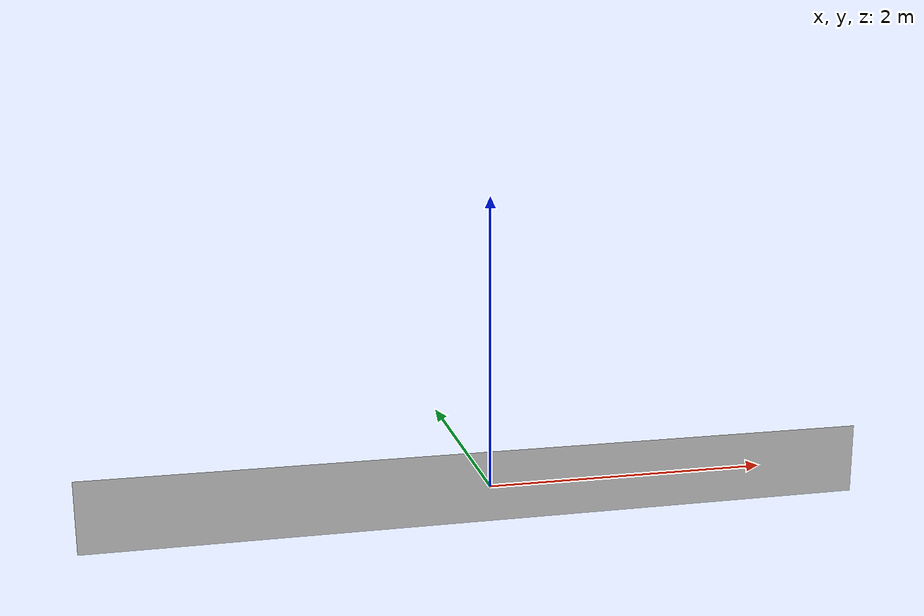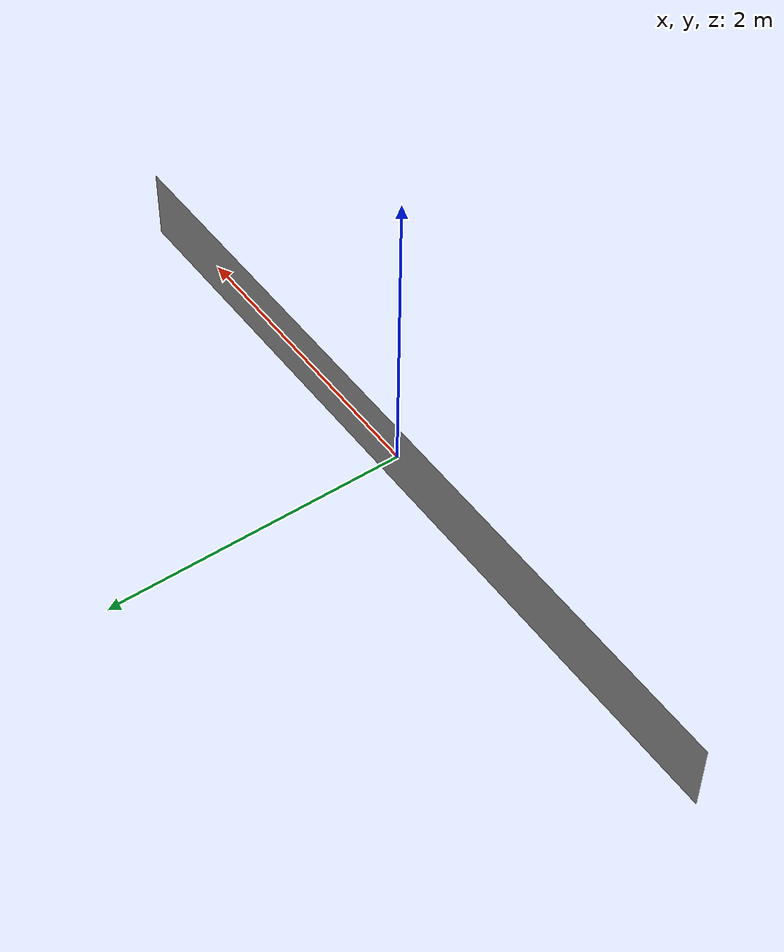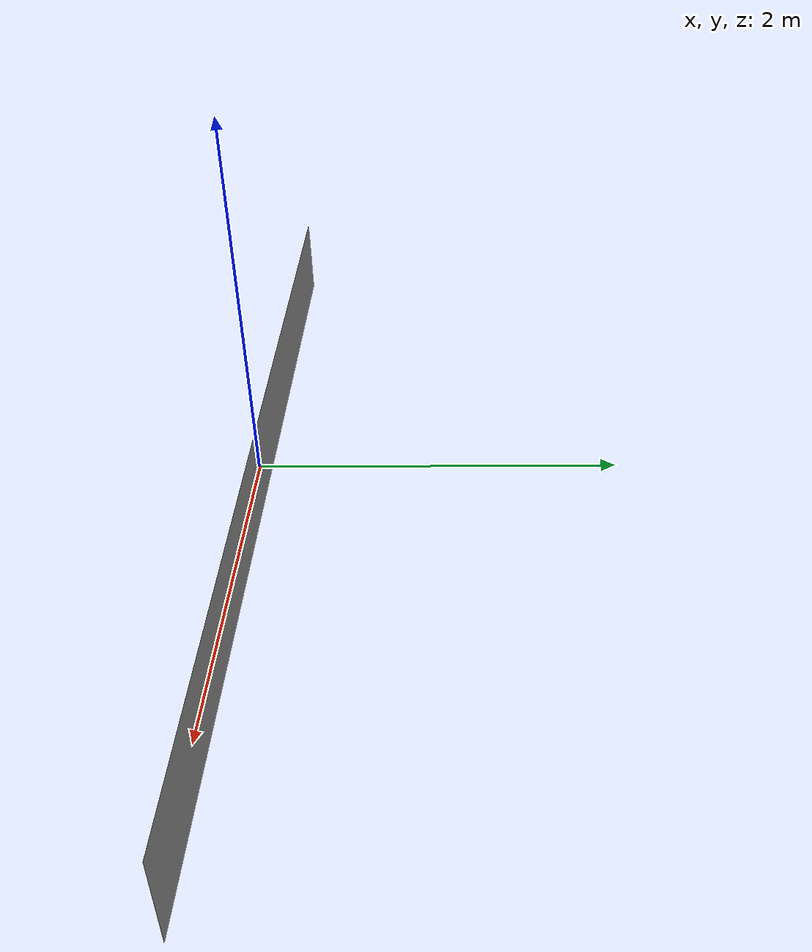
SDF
<?xml version="1.0"?>
<sdf version='1.4'>
  <model name="wall">
  <link name='wall'>
    <pose>0 0 0 0 0 0</pose>
    <inertial>
      <inertia>
        <ixx>1e-6</ixx>
        <ixy>0</ixy>
        <ixz>0</ixz>
        <iyy>1e-6</iyy>
        <iyz>0</iyz>
        <izz>1e-6</izz>
      </inertia>
      <mass>1e-6</mass>
    </inertial>
    <collision name='collision'>
      <pose>0 0 0 0 0 0</pose>
      <geometry>
        <box>
          <size>5.5 1e-6 0.5</size>
        </box>
      </geometry>
    </collision>
    <visual name='visual'>
      <geometry>
        <box>
          <size>5.5 1e-6 0.5</size>
        </box>
      </geometry>
      <material>
        <script>
          <uri>model://wall/materials/scripts</uri>
          <uri>model://wall/materials/textures</uri>
          <name>wall</name>
        </script>
      </material>
    </visual>
  </link>
</model>
</sdf>
